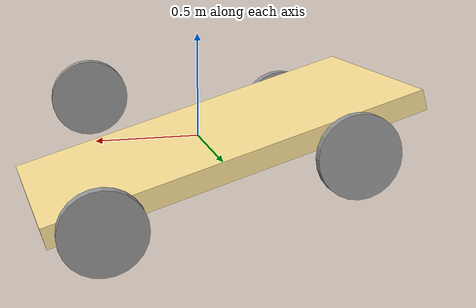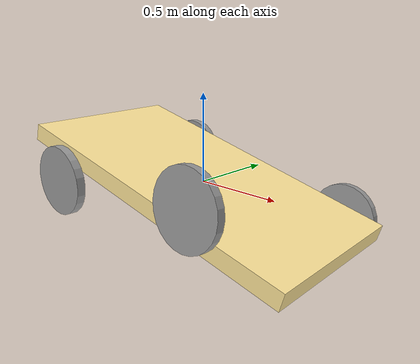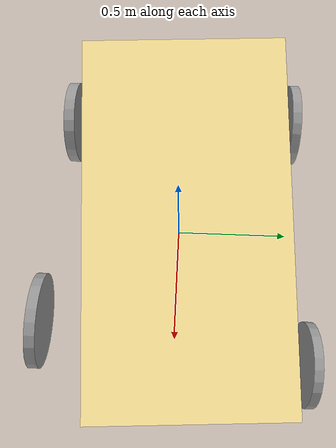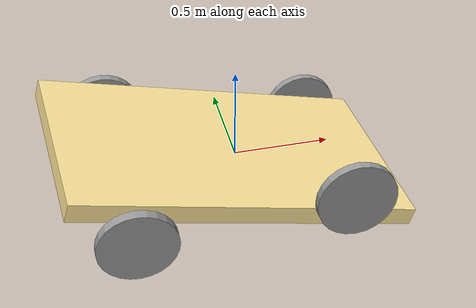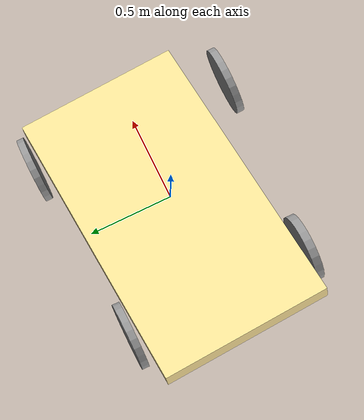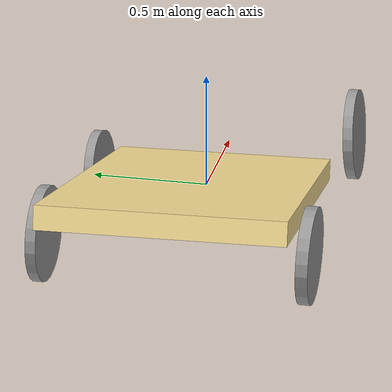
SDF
<?xml version='1.0'?>
<sdf version='1.6'>
  <model name='wheely'>
    <link name='link_0'>
      <pose frame=''>-0.050655 0.038805 -0.014544 1e-06 0.271798 0.057206</pose>
      <inertial>
        <mass>9.70976</mass>
        <inertia>
          <ixx>0.817238</ixx>
          <ixy>0</ixy>
          <ixz>0</ixz>
          <iyy>2.71066</iyy>
          <iyz>0</iyz>
          <izz>3.51172</izz>
        </inertia>
        <pose frame=''>0 0 0 0 -0 0</pose>
      </inertial>
      <self_collide>0</self_collide>
      <kinematic>0</kinematic>
      <gravity>1</gravity>
      <visual name='visual'>
        <pose frame=''>0 0 0 0 -0 0</pose>
        <geometry>
          <box>
            <size>1.82757 1 0.1</size>
          </box>
        </geometry>
        <material>
          <lighting>1</lighting>
          <script>
            <uri>file://media/materials/scripts/gazebo.material</uri>
            <name>Gazebo/Grey</name>
          </script>
          <ambient>1 0.9 0.6 1</ambient>
          <diffuse>1 0.9 0.6 1</diffuse>
          <specular>0.01 0.01 0.01 1</specular>
          <emissive>0 0 0 1</emissive>
          <shader type='vertex'>
            <normal_map>__default__</normal_map>
          </shader>
        </material>
        <cast_shadows>1</cast_shadows>
        <transparency>0</transparency>
      </visual>
      <collision name='collision'>
        <laser_retro>0</laser_retro>
        <max_contacts>10</max_contacts>
        <pose frame=''>0 0 0 0 -0 0</pose>
        <geometry>
          <box>
            <size>1.82757 1 0.1</size>
          </box>
        </geometry>
        <surface>
          <friction>
            <ode>
              <mu>1</mu>
              <mu2>1</mu2>
              <fdir1>0 0 0</fdir1>
              <slip1>0</slip1>
              <slip2>0</slip2>
            </ode>
            <torsional>
              <coefficient>1</coefficient>
              <patch_radius>0</patch_radius>
              <surface_radius>0</surface_radius>
              <use_patch_radius>1</use_patch_radius>
              <ode>
                <slip>0</slip>
              </ode>
            </torsional>
          </friction>
          <bounce>
            <restitution_coefficient>0</restitution_coefficient>
            <threshold>1e+06</threshold>
          </bounce>
          <contact>
            <collide_without_contact>0</collide_without_contact>
            <collide_without_contact_bitmask>1</collide_without_contact_bitmask>
            <collide_bitmask>1</collide_bitmask>
            <ode>
              <soft_cfm>0</soft_cfm>
              <soft_erp>0.2</soft_erp>
              <kp>1e+13</kp>
              <kd>1</kd>
              <max_vel>0.01</max_vel>
              <min_depth>0</min_depth>
            </ode>
            <bullet>
              <split_impulse>1</split_impulse>
              <split_impulse_penetration_threshold>-0.01</split_impulse_penetration_threshold>
              <soft_cfm>0</soft_cfm>
              <soft_erp>0.2</soft_erp>
              <kp>1e+13</kp>
              <kd>1</kd>
            </bullet>
          </contact>
        </surface>
      </collision>
    </link>
    <link name='link_1'>
      <pose frame=''>-0.596107 -0.550019 -0 1.5707 -0 0</pose>
      <inertial>
        <mass>0.499601</mass>
        <inertia>
          <ixx>0.00509991</ixx>
          <ixy>0</ixy>
          <ixz>0</ixz>
          <iyy>0.00509991</iyy>
          <iyz>0</iyz>
          <izz>0.00999201</izz>
        </inertia>
        <pose frame=''>0 0 0 0 -0 0</pose>
      </inertial>
      <self_collide>0</self_collide>
      <kinematic>0</kinematic>
      <gravity>1</gravity>
      <visual name='visual'>
        <pose frame=''>0 0 0 0 -0 0</pose>
        <geometry>
          <cylinder>
            <radius>0.2</radius>
            <length>0.049957</length>
          </cylinder>
        </geometry>
        <material>
          <lighting>1</lighting>
          <script>
            <uri>file://media/materials/scripts/gazebo.material</uri>
            <name>Gazebo/Grey</name>
          </script>
          <ambient>0.5 0.5 0.5 1</ambient>
          <diffuse>0.5 0.5 0.5 1</diffuse>
          <specular>0.01 0.01 0.01 1</specular>
          <emissive>0 0 0 1</emissive>
          <shader type='vertex'>
            <normal_map>__default__</normal_map>
          </shader>
        </material>
        <cast_shadows>1</cast_shadows>
        <transparency>0</transparency>
      </visual>
      <collision name='collision'>
        <laser_retro>0</laser_retro>
        <max_contacts>10</max_contacts>
        <pose frame=''>0 0 0 0 -0 0</pose>
        <geometry>
          <cylinder>
            <radius>0.2</radius>
            <length>0.049957</length>
          </cylinder>
        </geometry>
        <surface>
          <friction>
            <ode>
              <mu>1</mu>
              <mu2>1</mu2>
              <fdir1>0 0 0</fdir1>
              <slip1>0</slip1>
              <slip2>0</slip2>
            </ode>
            <torsional>
              <coefficient>1</coefficient>
              <patch_radius>0</patch_radius>
              <surface_radius>0</surface_radius>
              <use_patch_radius>1</use_patch_radius>
              <ode>
                <slip>0</slip>
              </ode>
            </torsional>
          </friction>
          <bounce>
            <restitution_coefficient>0</restitution_coefficient>
            <threshold>1e+06</threshold>
          </bounce>
          <contact>
            <collide_without_contact>0</collide_without_contact>
            <collide_without_contact_bitmask>1</collide_without_contact_bitmask>
            <collide_bitmask>1</collide_bitmask>
            <ode>
              <soft_cfm>0</soft_cfm>
              <soft_erp>0.2</soft_erp>
              <kp>1e+13</kp>
              <kd>1</kd>
              <max_vel>0.01</max_vel>
              <min_depth>0</min_depth>
            </ode>
            <bullet>
              <split_impulse>1</split_impulse>
              <split_impulse_penetration_threshold>-0.01</split_impulse_penetration_threshold>
              <soft_cfm>0</soft_cfm>
              <soft_erp>0.2</soft_erp>
              <kp>1e+13</kp>
              <kd>1</kd>
            </bullet>
          </contact>
        </surface>
      </collision>
    </link>
    <link name='link_1_clone'>
      <pose frame=''>-0.61948 0.550019 0 1.5707 -0 0</pose>
      <inertial>
        <mass>0.43298</mass>
        <inertia>
          <ixx>0.00439744</ixx>
          <ixy>0</ixy>
          <ixz>0</ixz>
          <iyy>0.00439744</iyy>
          <iyz>0</iyz>
          <izz>0.00865959</izz>
        </inertia>
        <pose frame=''>0 0 0 0 -0 0</pose>
      </inertial>
      <self_collide>0</self_collide>
      <kinematic>0</kinematic>
      <gravity>1</gravity>
      <visual name='visual'>
        <pose frame=''>0 0 0 0 -0 0</pose>
        <geometry>
          <cylinder>
            <radius>0.2</radius>
            <length>0.0432982</length>
          </cylinder>
        </geometry>
        <material>
          <lighting>1</lighting>
          <script>
            <uri>file://media/materials/scripts/gazebo.material</uri>
            <name>Gazebo/Grey</name>
          </script>
          <ambient>0.5 0.5 0.5 1</ambient>
          <diffuse>0.5 0.5 0.5 1</diffuse>
          <specular>0.01 0.01 0.01 1</specular>
          <emissive>0 0 0 1</emissive>
          <shader type='vertex'>
            <normal_map>__default__</normal_map>
          </shader>
        </material>
        <cast_shadows>1</cast_shadows>
        <transparency>0</transparency>
      </visual>
      <collision name='collision'>
        <laser_retro>0</laser_retro>
        <max_contacts>10</max_contacts>
        <pose frame=''>0 0 0 0 -0 0</pose>
        <geometry>
          <cylinder>
            <radius>0.2</radius>
            <length>0.043298</length>
          </cylinder>
        </geometry>
        <surface>
          <friction>
            <ode>
              <mu>1</mu>
              <mu2>1</mu2>
              <fdir1>0 0 0</fdir1>
              <slip1>0</slip1>
              <slip2>0</slip2>
            </ode>
            <torsional>
              <coefficient>1</coefficient>
              <patch_radius>0</patch_radius>
              <surface_radius>0</surface_radius>
              <use_patch_radius>1</use_patch_radius>
              <ode>
                <slip>0</slip>
              </ode>
            </torsional>
          </friction>
          <bounce>
            <restitution_coefficient>0</restitution_coefficient>
            <threshold>1e+06</threshold>
          </bounce>
          <contact>
            <collide_without_contact>0</collide_without_contact>
            <collide_without_contact_bitmask>1</collide_without_contact_bitmask>
            <collide_bitmask>1</collide_bitmask>
            <ode>
              <soft_cfm>0</soft_cfm>
              <soft_erp>0.2</soft_erp>
              <kp>1e+13</kp>
              <kd>1</kd>
              <max_vel>0.01</max_vel>
              <min_depth>0</min_depth>
            </ode>
            <bullet>
              <split_impulse>1</split_impulse>
              <split_impulse_penetration_threshold>-0.01</split_impulse_penetration_threshold>
              <soft_cfm>0</soft_cfm>
              <soft_erp>0.2</soft_erp>
              <kp>1e+13</kp>
              <kd>1</kd>
            </bullet>
          </contact>
        </surface>
      </collision>
    </link>
    <link name='link_1_clone_clone'>
      <pose frame=''>0.460007 -0.573936 0.098437 1.5 -0 0</pose>
      <inertial>
        <mass>0.43298</mass>
        <inertia>
          <ixx>0.00439744</ixx>
          <ixy>0</ixy>
          <ixz>0</ixz>
          <iyy>0.00439744</iyy>
          <iyz>0</iyz>
          <izz>0.00865959</izz>
        </inertia>
        <pose frame=''>0 0 0 0 -0 0</pose>
      </inertial>
      <self_collide>0</self_collide>
      <kinematic>0</kinematic>
      <gravity>1</gravity>
      <visual name='visual'>
        <pose frame=''>0 0 0 0 -0 0</pose>
        <geometry>
          <cylinder>
            <radius>0.2</radius>
            <length>0.0432982</length>
          </cylinder>
        </geometry>
        <material>
          <lighting>1</lighting>
          <script>
            <uri>file://media/materials/scripts/gazebo.material</uri>
            <name>Gazebo/Grey</name>
          </script>
          <ambient>0.5 0.5 0.5 1</ambient>
          <diffuse>0.5 0.5 0.5 1</diffuse>
          <specular>0.01 0.01 0.01 1</specular>
          <emissive>0 0 0 1</emissive>
          <shader type='vertex'>
            <normal_map>__default__</normal_map>
          </shader>
        </material>
        <cast_shadows>1</cast_shadows>
        <transparency>0</transparency>
      </visual>
      <collision name='collision'>
        <laser_retro>0</laser_retro>
        <max_contacts>10</max_contacts>
        <pose frame=''>0 0 0 0 -0 0</pose>
        <geometry>
          <cylinder>
            <radius>0.2</radius>
            <length>0.043298</length>
          </cylinder>
        </geometry>
        <surface>
          <friction>
            <ode>
              <mu>1</mu>
              <mu2>1</mu2>
              <fdir1>0 0 0</fdir1>
              <slip1>0</slip1>
              <slip2>0</slip2>
            </ode>
            <torsional>
              <coefficient>1</coefficient>
              <patch_radius>0</patch_radius>
              <surface_radius>0</surface_radius>
              <use_patch_radius>1</use_patch_radius>
              <ode>
                <slip>0</slip>
              </ode>
            </torsional>
          </friction>
          <bounce>
            <restitution_coefficient>0</restitution_coefficient>
            <threshold>1e+06</threshold>
          </bounce>
          <contact>
            <collide_without_contact>0</collide_without_contact>
            <collide_without_contact_bitmask>1</collide_without_contact_bitmask>
            <collide_bitmask>1</collide_bitmask>
            <ode>
              <soft_cfm>0</soft_cfm>
              <soft_erp>0.2</soft_erp>
              <kp>1e+13</kp>
              <kd>1</kd>
              <max_vel>0.01</max_vel>
              <min_depth>0</min_depth>
            </ode>
            <bullet>
              <split_impulse>1</split_impulse>
              <split_impulse_penetration_threshold>-0.01</split_impulse_penetration_threshold>
              <soft_cfm>0</soft_cfm>
              <soft_erp>0.2</soft_erp>
              <kp>1e+13</kp>
              <kd>1</kd>
            </bullet>
          </contact>
        </surface>
      </collision>
    </link>
    <link name='link_1_clone_clone_clone_0'>
      <pose frame=''>0.552681 0.62579 -0.239322 1.5 -0 0</pose>
      <inertial>
        <mass>0.43298</mass>
        <inertia>
          <ixx>0.00439744</ixx>
          <ixy>0</ixy>
          <ixz>0</ixz>
          <iyy>0.00439744</iyy>
          <iyz>0</iyz>
          <izz>0.00865959</izz>
        </inertia>
        <pose frame=''>0 0 0 0 -0 0</pose>
      </inertial>
      <self_collide>0</self_collide>
      <kinematic>0</kinematic>
      <gravity>1</gravity>
      <visual name='visual'>
        <pose frame=''>0 0 0 0 -0 0</pose>
        <geometry>
          <cylinder>
            <radius>0.2</radius>
            <length>0.0432982</length>
          </cylinder>
        </geometry>
        <material>
          <lighting>1</lighting>
          <script>
            <uri>file://media/materials/scripts/gazebo.material</uri>
            <name>Gazebo/Grey</name>
          </script>
          <ambient>0.5 0.5 0.5 1</ambient>
          <diffuse>0.5 0.5 0.5 1</diffuse>
          <specular>0.01 0.01 0.01 1</specular>
          <emissive>0 0 0 1</emissive>
          <shader type='vertex'>
            <normal_map>__default__</normal_map>
          </shader>
        </material>
        <cast_shadows>1</cast_shadows>
        <transparency>0</transparency>
      </visual>
      <collision name='collision'>
        <laser_retro>0</laser_retro>
        <max_contacts>10</max_contacts>
        <pose frame=''>0 0 0 0 -0 0</pose>
        <geometry>
          <cylinder>
            <radius>0.2</radius>
            <length>0.043298</length>
          </cylinder>
        </geometry>
        <surface>
          <friction>
            <ode>
              <mu>1</mu>
              <mu2>1</mu2>
              <fdir1>0 0 0</fdir1>
              <slip1>0</slip1>
              <slip2>0</slip2>
            </ode>
            <torsional>
              <coefficient>1</coefficient>
              <patch_radius>0</patch_radius>
              <surface_radius>0</surface_radius>
              <use_patch_radius>1</use_patch_radius>
              <ode>
                <slip>0</slip>
              </ode>
            </torsional>
          </friction>
          <bounce>
            <restitution_coefficient>0</restitution_coefficient>
            <threshold>1e+06</threshold>
          </bounce>
          <contact>
            <collide_without_contact>0</collide_without_contact>
            <collide_without_contact_bitmask>1</collide_without_contact_bitmask>
            <collide_bitmask>1</collide_bitmask>
            <ode>
              <soft_cfm>0</soft_cfm>
              <soft_erp>0.2</soft_erp>
              <kp>1e+13</kp>
              <kd>1</kd>
              <max_vel>0.01</max_vel>
              <min_depth>0</min_depth>
            </ode>
            <bullet>
              <split_impulse>1</split_impulse>
              <split_impulse_penetration_threshold>-0.01</split_impulse_penetration_threshold>
              <soft_cfm>0</soft_cfm>
              <soft_erp>0.2</soft_erp>
              <kp>1e+13</kp>
              <kd>1</kd>
            </bullet>
          </contact>
        </surface>
      </collision>
    </link>
    <joint name='link_0_JOINT_0_0' type='revolute'>
      <parent>link_0</parent>
      <child>link_1_clone_clone_clone_0</child>
      <pose frame=''>0 0 0 0 -0 0</pose>
      <axis>
        <xyz>1 0 0</xyz>
        <use_parent_model_frame>0</use_parent_model_frame>
        <limit>
          <lower>-1.79769e+308</lower>
          <upper>1.79769e+308</upper>
          <effort>-1</effort>
          <velocity>-1</velocity>
        </limit>
        <dynamics>
          <spring_reference>0</spring_reference>
          <spring_stiffness>0</spring_stiffness>
          <damping>0</damping>
        </dynamics>
      </axis>
      <physics>
        <ode>
          <limit>
            <cfm>0</cfm>
            <erp>0.2</erp>
          </limit>
          <suspension>
            <cfm>0</cfm>
            <erp>0.2</erp>
          </suspension>
        </ode>
      </physics>
    </joint>
    <joint name='link_0_JOINT_0' type='revolute'>
      <parent>link_0</parent>
      <child>link_1</child>
      <pose frame=''>0 0 0 0 -0 0</pose>
      <axis>
        <xyz>0 0 1</xyz>
        <use_parent_model_frame>0</use_parent_model_frame>
        <limit>
          <lower>-1.79769e+308</lower>
          <upper>1.79769e+308</upper>
          <effort>-1</effort>
          <velocity>-1</velocity>
        </limit>
        <dynamics>
          <spring_reference>0</spring_reference>
          <spring_stiffness>0</spring_stiffness>
          <damping>0</damping>
          <friction>0</friction>
        </dynamics>
      </axis>
      <physics>
        <ode>
          <limit>
            <cfm>0</cfm>
            <erp>0.2</erp>
          </limit>
          <suspension>
            <cfm>0</cfm>
            <erp>0.2</erp>
          </suspension>
        </ode>
      </physics>
    </joint>
    <joint name='link_0_JOINT_1_0' type='revolute'>
      <parent>link_0</parent>
      <child>link_1_clone_clone</child>
      <pose frame=''>0 0 0 0 -0 0</pose>
      <axis>
        <xyz>1 0 0</xyz>
        <use_parent_model_frame>0</use_parent_model_frame>
        <limit>
          <lower>-1.79769e+308</lower>
          <upper>1.79769e+308</upper>
          <effort>-1</effort>
          <velocity>-1</velocity>
        </limit>
        <dynamics>
          <spring_reference>0</spring_reference>
          <spring_stiffness>0</spring_stiffness>
          <damping>0</damping>
        </dynamics>
      </axis>
      <physics>
        <ode>
          <limit>
            <cfm>0</cfm>
            <erp>0.2</erp>
          </limit>
          <suspension>
            <cfm>0</cfm>
            <erp>0.2</erp>
          </suspension>
        </ode>
      </physics>
    </joint>
    <joint name='link_0_JOINT_1' type='revolute'>
      <parent>link_0</parent>
      <child>link_1_clone</child>
      <pose frame=''>0 0 0 0 -0 0</pose>
      <axis>
        <xyz>0 0 1</xyz>
        <use_parent_model_frame>0</use_parent_model_frame>
        <limit>
          <lower>-1.79769e+308</lower>
          <upper>1.79769e+308</upper>
          <effort>-1</effort>
          <velocity>-1</velocity>
        </limit>
        <dynamics>
          <spring_reference>0</spring_reference>
          <spring_stiffness>0</spring_stiffness>
          <damping>0</damping>
          <friction>0</friction>
        </dynamics>
      </axis>
      <physics>
        <ode>
          <limit>
            <cfm>0</cfm>
            <erp>0.2</erp>
          </limit>
          <suspension>
            <cfm>0</cfm>
            <erp>0.2</erp>
          </suspension>
        </ode>
      </physics>
    </joint>
    <static>0</static>
    <allow_auto_disable>1</allow_auto_disable>
  </model>
</sdf>
